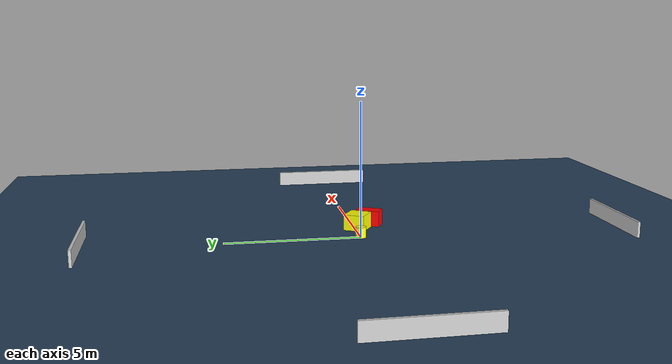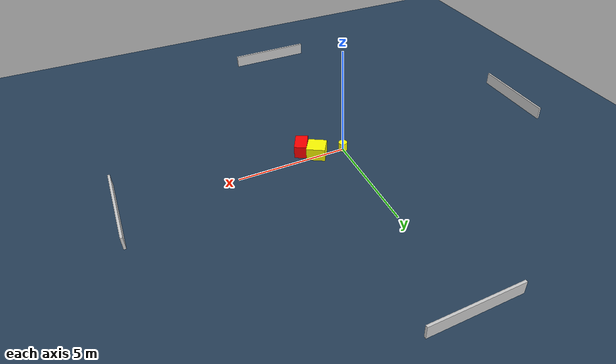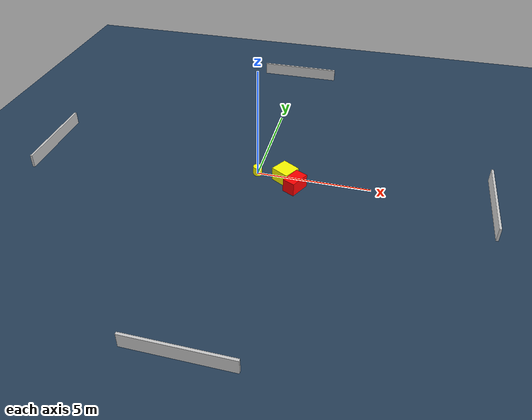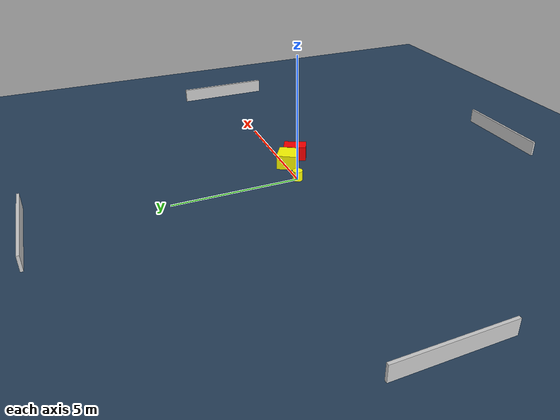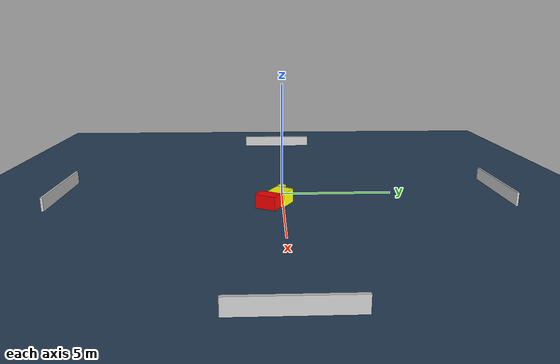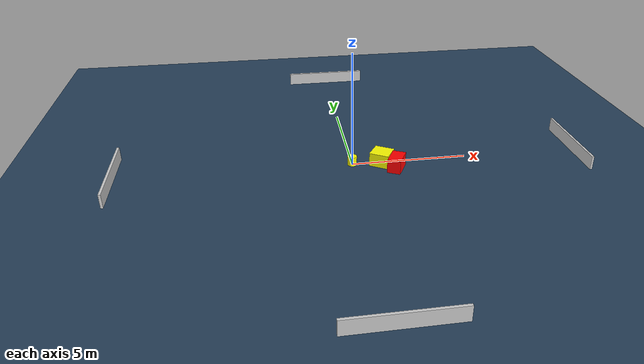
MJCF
<?xml version="1.0" ?>
<mujoco model="generated_environment">
  <option timestep="0.01" integrator="RK4" cone="elliptic"/>
  <default>
    <geom density="1"/>
  </default>
  <asset>
    <texture builtin="gradient" height="3072" name="skybox" rgb1="0.3 0.5 0.7" rgb2="0 0 0" type="skybox" width="512"/>
    <texture builtin="checker" height="300" name="groundplane" rgb1="0.2 0.3 0.4" rgb2="0.1 0.2 0.3" type="2d" width="300"/>
    <material name="groundplane" reflectance="0.2" texrepeat="5 5" texture="groundplane"/>
  </asset>
  <worldbody>
    <light dir="0 0 -1" directional="true" pos="0 0 1.5"/>
    <geom condim="3" friction="0.5 0.005 0.001" material="groundplane" name="floor" pos="0 0 0" size="0 0 0.05" type="plane"/>
    <body name="walls">
      <geom name="wall_1" condim="4" pos="-10.0 0.0 0.3" rgba="0.800000011920929 0.800000011920929 0.800000011920929 1.0" size="0.05 2.0 0.3" type="box"/>
      <geom name="wall_2" condim="4" pos="10.0 0.0 0.3" rgba="0.800000011920929 0.800000011920929 0.800000011920929 1.0" size="0.05 2.0 0.3" type="box"/>
      <geom name="wall_3" condim="4" pos="0.0 -10.0 0.3" rgba="0.800000011920929 0.800000011920929 0.800000011920929 1.0" size="2.0 0.05 0.3" type="box"/>
      <geom name="wall_4" condim="4" pos="0.0 10.0 0.3" rgba="0.800000011920929 0.800000011920929 0.800000011920929 1.0" size="2.0 0.05 0.3" type="box"/>
    </body>
    <body name="robot">
      <joint name="joint_x" type="slide" pos="0 0 0" axis="1 0 0"/>
      <joint name="joint_y" type="slide" pos="0 0 0" axis="0 1 0"/>
      <geom name="robot" type="cylinder" pos="0.0 0.0 0.2" size="0.2 0.2 0.0" mass="5.0" friction="1.0 0.005 0.0001" condim="4" rgba="1.0 1.0 0.0 1.0"/>
    </body>
    <body name="obstacle_1_movable">
      <geom name="obstacle_1_movable" condim="4" pos="1.273449236252592 -0.11195684180987306 0.3" euler="0 0 328.73700123645483" friction="0.0 0.005 0.001" rgba="1.0 1.0 0.0 1.0" size="0.42217610897412106 0.3988226219037193 0.3" type="box" mass="0.1"/>
      <joint type="free"/>
    </body>
    <body name="obstacle_2_static">
      <geom name="obstacle_2_static" condim="4" pos="1.8081097499224825 -0.6598091357922287 0.3" euler="0 0 333.0833629571153" friction="0.0 0.005 0.001" rgba="1.0 0.0 0.0 1.0" size="0.28434478912588146 0.4621234518045615 0.3" type="box"/>
    </body>
  </worldbody>
  <actuator>
    <motor name="actuator_x" joint="joint_x" gear="1" ctrlrange="-1 1"/>
    <motor name="actuator_y" joint="joint_y" gear="1" ctrlrange="-1 1"/>
  </actuator>
</mujoco>
